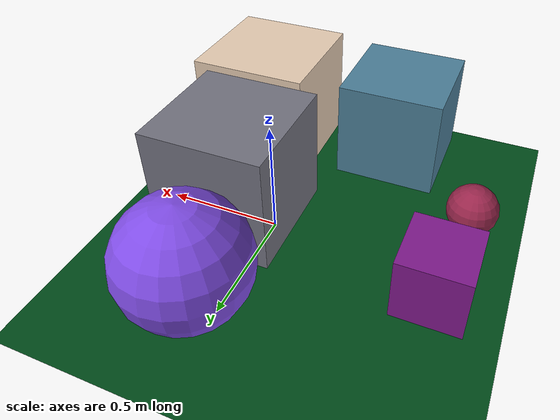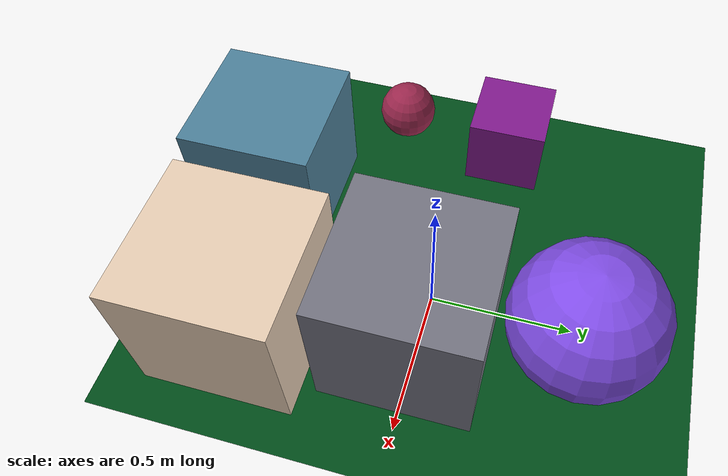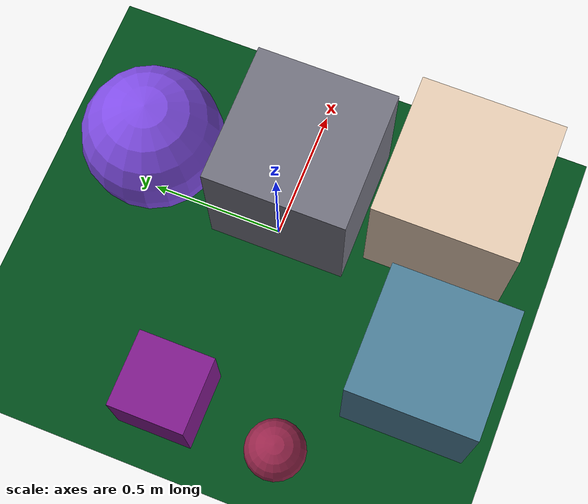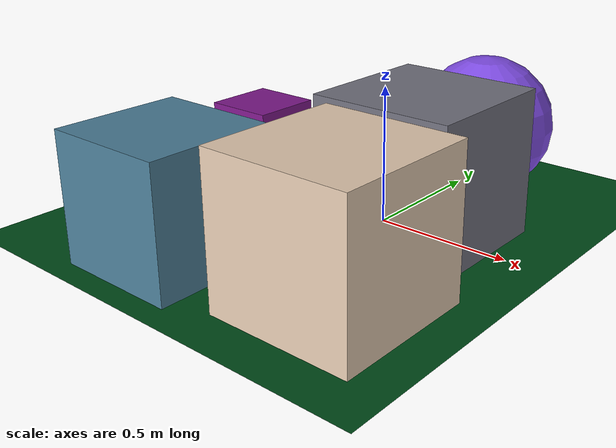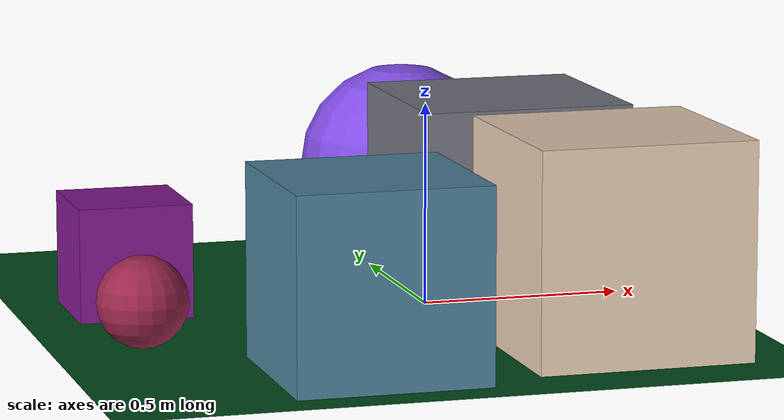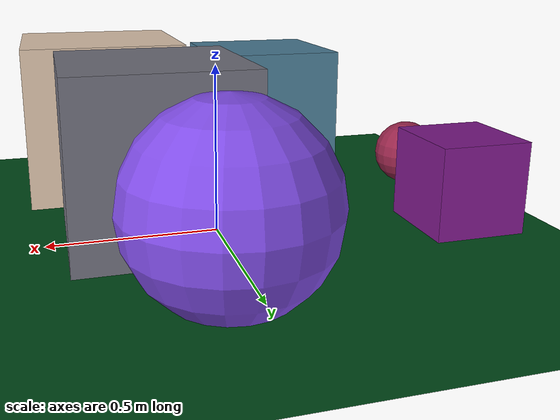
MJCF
<mujoco>
   <asset>
<texture type="skybox" builtin="gradient" rgb1="0.5 0.2 0.1" rgb2="0.8 0.5 0.1" width="256" height="256"/>
<texture name="flat_0" builtin="flat" rgb1="0.5 0.3 0.9" rgb2="0.5 0.3 0.9"  width="200" height="200"/>
<texture name="flat_1" builtin="flat" rgb1="0.9 0.8 0.7" rgb2="0.9 0.8 0.7"  width="200" height="200"/>
<texture name="checker_2" builtin="checker" type="2d" rgb1="0.8 0.2 0.5" rgb2="0.4 0.1 0.1" width="200" height="200"/>
<texture name="flat_3" builtin="flat" rgb1="0.3 0.5 0.6" rgb2="0.3 0.5 0.6"  width="200" height="200"/>
<texture name="gradient_4" builtin="gradient" rgb1="0.8 0.0 0.9" rgb2="0.2 0.2 0.2" width="200" height="200"/>
<texture name="gradient_5" builtin="gradient" rgb1="0.3 0.6 0.9" rgb2="0.6 0.3 0.1" width="200" height="200"/><material name="flat_0_mat" reflectance="1" texture="flat_0" texuniform="true"/>
<material name="flat_1_mat" reflectance="1" texture="flat_1" texuniform="true"/>
<material name="checker_2_mat" reflectance="0.9" texrepeat="5 5" texture="checker_2" texuniform="false" />
<material name="flat_3_mat" reflectance="1" texture="flat_3" texuniform="true"/>
<material name="gradient_4_mat" reflectance="1" texture="gradient_4" texuniform="true"/>
<material name="gradient_5_mat" reflectance="1" texture="gradient_5" texuniform="true"/>
   </asset>

   <worldbody>
      <light diffuse=".9 .9 .9" pos="0 0 3" dir="0 0 -1"/>
     <geom type="plane" size="1 1 0.1" rgba="0.0 0.3 0.1 1"/>
<body pos="0.09 0.52 0.26">
<joint type="free"/>
 <geom type="sphere" size="0.26 0.26 0.26" material="flat_0_mat" />
</body>
<body pos="0.28 -0.59 0.26">
<joint type="free"/>
 <geom type="box" size="0.26 0.26 0.26" material="flat_1_mat" />
</body>
<body pos="-0.78 -0.3 0.11">
<joint type="free"/>
 <geom type="sphere" size="0.11 0.11 0.11" material="checker_2_mat" />
</body>
<body pos="-0.34 -0.69 0.23">
<joint type="free"/>
 <geom type="box" size="0.23 0.23 0.23" material="flat_3_mat" />
</body>
<body pos="-0.73 0.13 0.14">
<joint type="free"/>
 <geom type="box" size="0.14 0.14 0.14" material="gradient_4_mat" />
</body>
<body pos="0.18 -0.02 0.26">
<joint type="free"/>
 <geom type="box" size="0.26 0.26 0.26" material="gradient_5_mat" />
</body><camera euler="60 0 180" fovy="60" name="camera_a" pos="0 -1.5 1"></camera>   </worldbody>
</mujoco>
